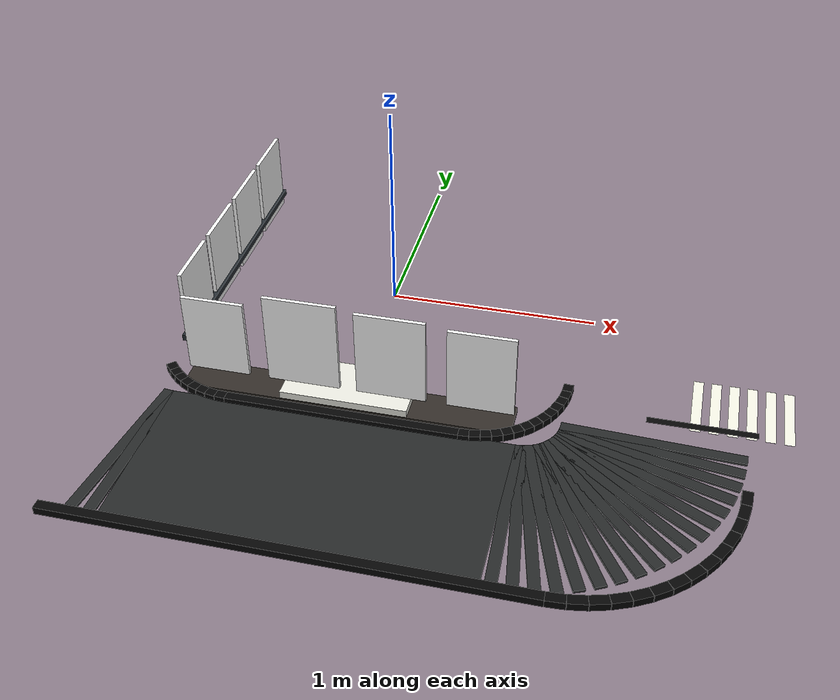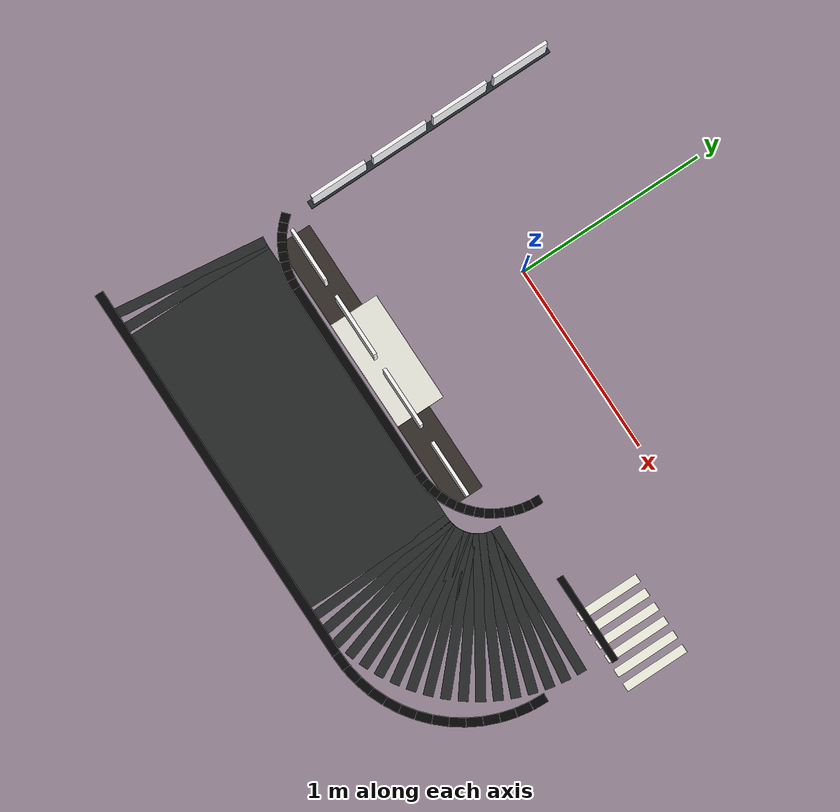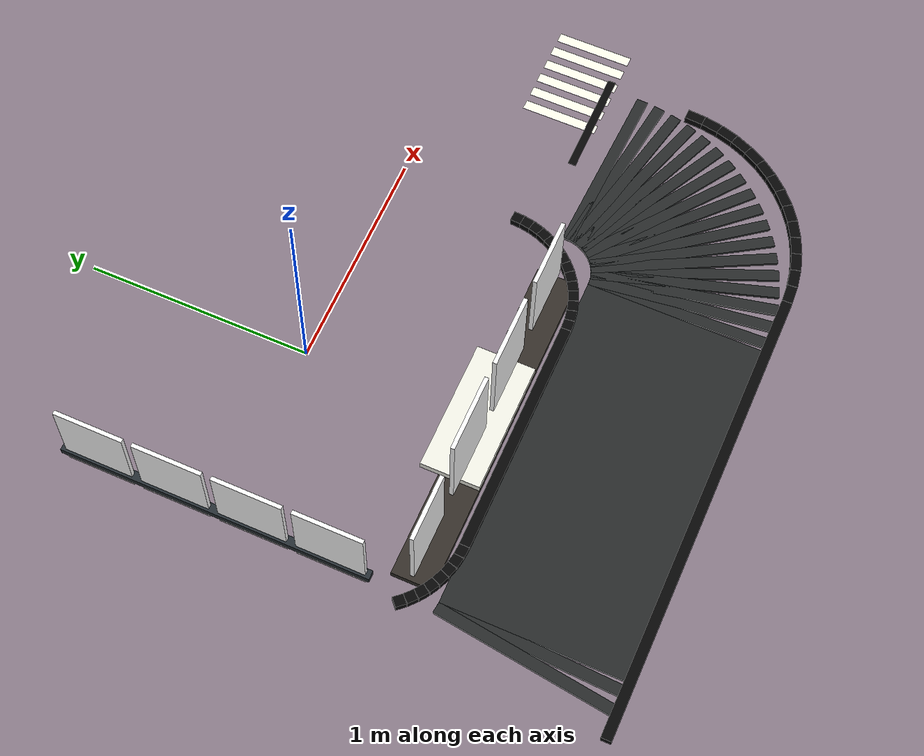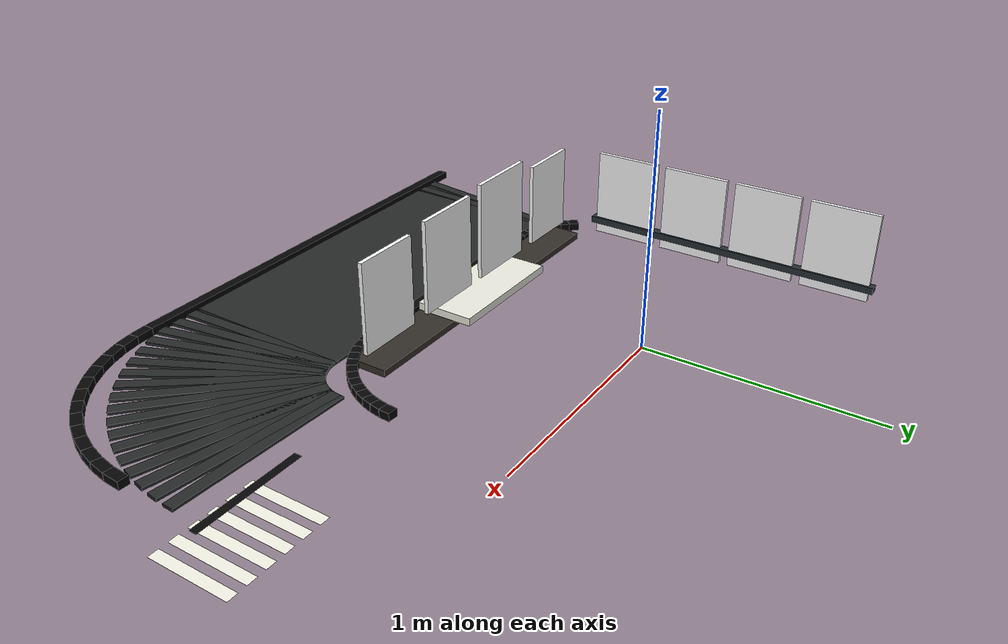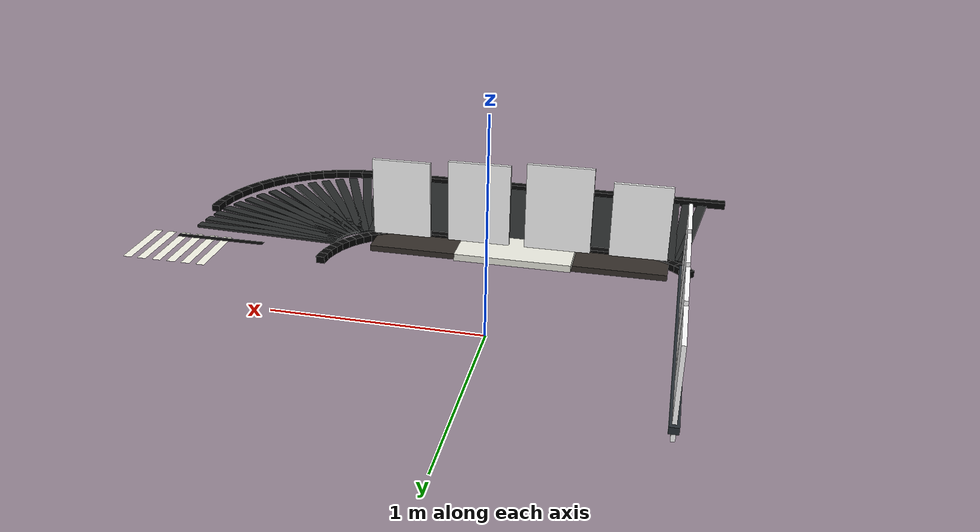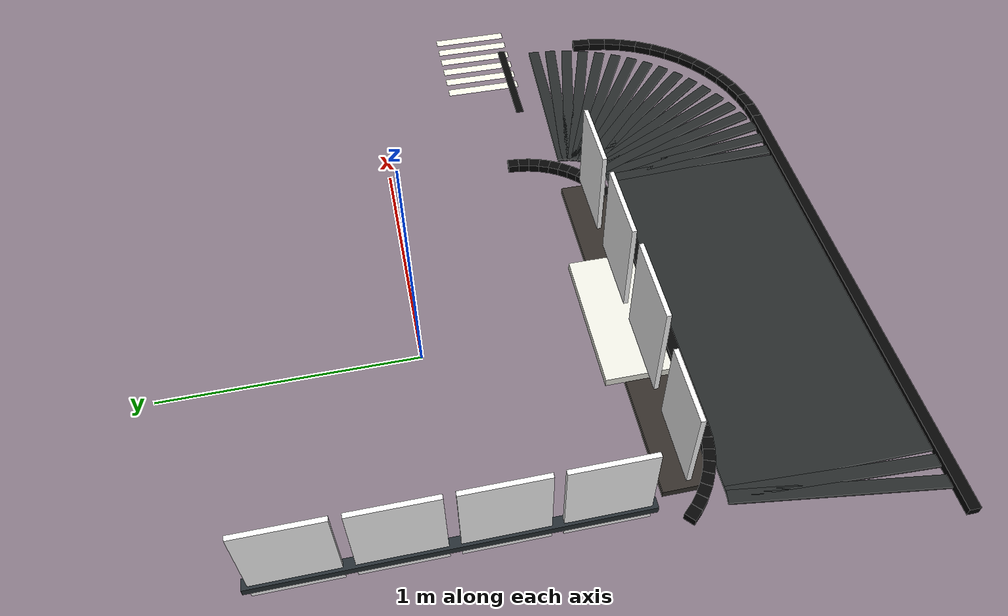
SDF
<sdf version="1.9">
 <world name="safe_city">
  <model name="road_surface_16">
   <static>true</static>
   <pose>-0.8543 -1.3446 0.0060 0 0 -0.13090</pose>
   <link name="link">
    <visual name="visual">
     <geometry><box><size>0.0497 0.8000 0.0120</size></box></geometry>
     <material><ambient>0.15 0.16 0.16 1</ambient><diffuse>0.15 0.16 0.16 1</diffuse></material>
    </visual>
   </link>
  </model>
  <model name="road_surface_17">
   <static>true</static>
   <pose>-0.8048 -1.3489 0.0060 0 0 -0.04363</pose>
   <link name="link">
    <visual name="visual">
     <geometry><box><size>0.0497 0.8000 0.0120</size></box></geometry>
     <material><ambient>0.15 0.16 0.16 1</ambient><diffuse>0.15 0.16 0.16 1</diffuse></material>
    </visual>
   </link>
  </model>
  <model name="road_surface_18">
   <static>true</static>
   <pose>-0.0000 -1.3500 0.0060 0 0 0.00000</pose>
   <link name="link">
    <visual name="visual">
     <geometry><box><size>1.5600 0.8000 0.0120</size></box></geometry>
     <material><ambient>0.15 0.16 0.16 1</ambient><diffuse>0.15 0.16 0.16 1</diffuse></material>
    </visual>
   </link>
  </model>
  <model name="road_surface_19">
   <static>true</static>
   <pose>0.8048 -1.3489 0.0060 0 0 0.04363</pose>
   <link name="link">
    <visual name="visual">
     <geometry><box><size>0.0497 0.8000 0.0120</size></box></geometry>
     <material><ambient>0.15 0.16 0.16 1</ambient><diffuse>0.15 0.16 0.16 1</diffuse></material>
    </visual>
   </link>
  </model>
  <model name="road_surface_20">
   <static>true</static>
   <pose>0.8543 -1.3446 0.0060 0 0 0.13090</pose>
   <link name="link">
    <visual name="visual">
     <geometry><box><size>0.0497 0.8000 0.0120</size></box></geometry>
     <material><ambient>0.15 0.16 0.16 1</ambient><diffuse>0.15 0.16 0.16 1</diffuse></material>
    </visual>
   </link>
  </model>
  <model name="road_surface_21">
   <static>true</static>
   <pose>0.9033 -1.3360 0.0060 0 0 0.21817</pose>
   <link name="link">
    <visual name="visual">
     <geometry><box><size>0.0497 0.8000 0.0120</size></box></geometry>
     <material><ambient>0.15 0.16 0.16 1</ambient><diffuse>0.15 0.16 0.16 1</diffuse></material>
    </visual>
   </link>
  </model>
  <model name="road_surface_22">
   <static>true</static>
   <pose>0.9512 -1.3231 0.0060 0 0 0.30543</pose>
   <link name="link">
    <visual name="visual">
     <geometry><box><size>0.0497 0.8000 0.0120</size></box></geometry>
     <material><ambient>0.15 0.16 0.16 1</ambient><diffuse>0.15 0.16 0.16 1</diffuse></material>
    </visual>
   </link>
  </model>
  <model name="road_surface_23">
   <static>true</static>
   <pose>0.9979 -1.3061 0.0060 0 0 0.39270</pose>
   <link name="link">
    <visual name="visual">
     <geometry><box><size>0.0497 0.8000 0.0120</size></box></geometry>
     <material><ambient>0.15 0.16 0.16 1</ambient><diffuse>0.15 0.16 0.16 1</diffuse></material>
    </visual>
   </link>
  </model>
  <model name="road_surface_24">
   <static>true</static>
   <pose>1.0429 -1.2851 0.0060 0 0 0.47997</pose>
   <link name="link">
    <visual name="visual">
     <geometry><box><size>0.0497 0.8000 0.0120</size></box></geometry>
     <material><ambient>0.15 0.16 0.16 1</ambient><diffuse>0.15 0.16 0.16 1</diffuse></material>
    </visual>
   </link>
  </model>
  <model name="road_surface_25">
   <static>true</static>
   <pose>1.0860 -1.2603 0.0060 0 0 0.56723</pose>
   <link name="link">
    <visual name="visual">
     <geometry><box><size>0.0497 0.8000 0.0120</size></box></geometry>
     <material><ambient>0.15 0.16 0.16 1</ambient><diffuse>0.15 0.16 0.16 1</diffuse></material>
    </visual>
   </link>
  </model>
  <model name="road_surface_26">
   <static>true</static>
   <pose>1.1267 -1.2318 0.0060 0 0 0.65450</pose>
   <link name="link">
    <visual name="visual">
     <geometry><box><size>0.0497 0.8000 0.0120</size></box></geometry>
     <material><ambient>0.15 0.16 0.16 1</ambient><diffuse>0.15 0.16 0.16 1</diffuse></material>
    </visual>
   </link>
  </model>
  <model name="road_surface_27">
   <static>true</static>
   <pose>1.1647 -1.1998 0.0060 0 0 0.74176</pose>
   <link name="link">
    <visual name="visual">
     <geometry><box><size>0.0497 0.8000 0.0120</size></box></geometry>
     <material><ambient>0.15 0.16 0.16 1</ambient><diffuse>0.15 0.16 0.16 1</diffuse></material>
    </visual>
   </link>
  </model>
  <model name="road_surface_28">
   <static>true</static>
   <pose>1.1998 -1.1647 0.0060 0 0 0.82903</pose>
   <link name="link">
    <visual name="visual">
     <geometry><box><size>0.0497 0.8000 0.0120</size></box></geometry>
     <material><ambient>0.15 0.16 0.16 1</ambient><diffuse>0.15 0.16 0.16 1</diffuse></material>
    </visual>
   </link>
  </model>
  <model name="road_surface_29">
   <static>true</static>
   <pose>1.2318 -1.1267 0.0060 0 0 0.91630</pose>
   <link name="link">
    <visual name="visual">
     <geometry><box><size>0.0497 0.8000 0.0120</size></box></geometry>
     <material><ambient>0.15 0.16 0.16 1</ambient><diffuse>0.15 0.16 0.16 1</diffuse></material>
    </visual>
   </link>
  </model>
  <model name="road_surface_30">
   <static>true</static>
   <pose>1.2603 -1.0860 0.0060 0 0 1.00356</pose>
   <link name="link">
    <visual name="visual">
     <geometry><box><size>0.0497 0.8000 0.0120</size></box></geometry>
     <material><ambient>0.15 0.16 0.16 1</ambient><diffuse>0.15 0.16 0.16 1</diffuse></material>
    </visual>
   </link>
  </model>
  <model name="road_surface_31">
   <static>true</static>
   <pose>1.2851 -1.0429 0.0060 0 0 1.09083</pose>
   <link name="link">
    <visual name="visual">
     <geometry><box><size>0.0497 0.8000 0.0120</size></box></geometry>
     <material><ambient>0.15 0.16 0.16 1</ambient><diffuse>0.15 0.16 0.16 1</diffuse></material>
    </visual>
   </link>
  </model>
  <model name="road_surface_32">
   <static>true</static>
   <pose>1.3061 -0.9979 0.0060 0 0 1.17810</pose>
   <link name="link">
    <visual name="visual">
     <geometry><box><size>0.0497 0.8000 0.0120</size></box></geometry>
     <material><ambient>0.15 0.16 0.16 1</ambient><diffuse>0.15 0.16 0.16 1</diffuse></material>
    </visual>
   </link>
  </model>
  <model name="road_surface_33">
   <static>true</static>
   <pose>1.3231 -0.9512 0.0060 0 0 1.26536</pose>
   <link name="link">
    <visual name="visual">
     <geometry><box><size>0.0497 0.8000 0.0120</size></box></geometry>
     <material><ambient>0.15 0.16 0.16 1</ambient><diffuse>0.15 0.16 0.16 1</diffuse></material>
    </visual>
   </link>
  </model>
  <model name="road_surface_34">
   <static>true</static>
   <pose>1.3360 -0.9033 0.0060 0 0 1.35263</pose>
   <link name="link">
    <visual name="visual">
     <geometry><box><size>0.0497 0.8000 0.0120</size></box></geometry>
     <material><ambient>0.15 0.16 0.16 1</ambient><diffuse>0.15 0.16 0.16 1</diffuse></material>
    </visual>
   </link>
  </model>
  <model name="road_surface_35">
   <static>true</static>
   <pose>1.3446 -0.8543 0.0060 0 0 1.43990</pose>
   <link name="link">
    <visual name="visual">
     <geometry><box><size>0.0497 0.8000 0.0120</size></box></geometry>
     <material><ambient>0.15 0.16 0.16 1</ambient><diffuse>0.15 0.16 0.16 1</diffuse></material>
    </visual>
   </link>
  </model>
  <model name="road_surface_36">
   <static>true</static>
   <pose>1.3489 -0.8048 0.0060 0 0 1.52716</pose>
   <link name="link">
    <visual name="visual">
     <geometry><box><size>0.0497 0.8000 0.0120</size></box></geometry>
     <material><ambient>0.15 0.16 0.16 1</ambient><diffuse>0.15 0.16 0.16 1</diffuse></material>
    </visual>
   </link>
  </model>
  <model name="outer_black_line_14">
   <static>true</static>
   <pose>-0.0000 -1.7500 0.0175 0 0 0.00000</pose>
   <link name="link">
    <collision name="collision"><geometry><box><size>2.0600 0.0450 0.0350</size></box></geometry></collision>
    <visual name="visual">
     <geometry><box><size>2.0600 0.0450 0.0350</size></box></geometry>
     <material><ambient>0.02 0.02 0.02 1</ambient><diffuse>0.02 0.02 0.02 1</diffuse></material>
    </visual>
   </link>
  </model>
  <model name="outer_black_line_15">
   <static>true</static>
   <pose>1.0703 -1.7477 0.0175 0 0 0.05610</pose>
   <link name="link">
    <collision name="collision"><geometry><box><size>0.0807 0.0450 0.0350</size></box></geometry></collision>
    <visual name="visual">
     <geometry><box><size>0.0807 0.0450 0.0350</size></box></geometry>
     <material><ambient>0.02 0.02 0.02 1</ambient><diffuse>0.02 0.02 0.02 1</diffuse></material>
    </visual>
   </link>
  </model>
  <model name="outer_black_line_16">
   <static>true</static>
   <pose>1.1504 -1.7387 0.0175 0 0 0.16830</pose>
   <link name="link">
    <collision name="collision"><geometry><box><size>0.0807 0.0450 0.0350</size></box></geometry></collision>
    <visual name="visual">
     <geometry><box><size>0.0807 0.0450 0.0350</size></box></geometry>
     <material><ambient>0.02 0.02 0.02 1</ambient><diffuse>0.02 0.02 0.02 1</diffuse></material>
    </visual>
   </link>
  </model>
  <model name="outer_black_line_17">
   <static>true</static>
   <pose>1.2290 -1.7208 0.0175 0 0 0.28050</pose>
   <link name="link">
    <collision name="collision"><geometry><box><size>0.0807 0.0450 0.0350</size></box></geometry></collision>
    <visual name="visual">
     <geometry><box><size>0.0807 0.0450 0.0350</size></box></geometry>
     <material><ambient>0.02 0.02 0.02 1</ambient><diffuse>0.02 0.02 0.02 1</diffuse></material>
    </visual>
   </link>
  </model>
  <model name="outer_black_line_18">
   <static>true</static>
   <pose>1.3051 -1.6941 0.0175 0 0 0.39270</pose>
   <link name="link">
    <collision name="collision"><geometry><box><size>0.0807 0.0450 0.0350</size></box></geometry></collision>
    <visual name="visual">
     <geometry><box><size>0.0807 0.0450 0.0350</size></box></geometry>
     <material><ambient>0.02 0.02 0.02 1</ambient><diffuse>0.02 0.02 0.02 1</diffuse></material>
    </visual>
   </link>
  </model>
  <model name="outer_black_line_19">
   <static>true</static>
   <pose>1.3777 -1.6592 0.0175 0 0 0.50490</pose>
   <link name="link">
    <collision name="collision"><geometry><box><size>0.0807 0.0450 0.0350</size></box></geometry></collision>
    <visual name="visual">
     <geometry><box><size>0.0807 0.0450 0.0350</size></box></geometry>
     <material><ambient>0.02 0.02 0.02 1</ambient><diffuse>0.02 0.02 0.02 1</diffuse></material>
    </visual>
   </link>
  </model>
  <model name="outer_black_line_20">
   <static>true</static>
   <pose>1.4460 -1.6163 0.0175 0 0 0.61710</pose>
   <link name="link">
    <collision name="collision"><geometry><box><size>0.0807 0.0450 0.0350</size></box></geometry></collision>
    <visual name="visual">
     <geometry><box><size>0.0807 0.0450 0.0350</size></box></geometry>
     <material><ambient>0.02 0.02 0.02 1</ambient><diffuse>0.02 0.02 0.02 1</diffuse></material>
    </visual>
   </link>
  </model>
  <model name="outer_black_line_21">
   <static>true</static>
   <pose>1.5090 -1.5660 0.0175 0 0 0.72930</pose>
   <link name="link">
    <collision name="collision"><geometry><box><size>0.0807 0.0450 0.0350</size></box></geometry></collision>
    <visual name="visual">
     <geometry><box><size>0.0807 0.0450 0.0350</size></box></geometry>
     <material><ambient>0.02 0.02 0.02 1</ambient><diffuse>0.02 0.02 0.02 1</diffuse></material>
    </visual>
   </link>
  </model>
  <model name="outer_black_line_22">
   <static>true</static>
   <pose>1.5660 -1.5090 0.0175 0 0 0.84150</pose>
   <link name="link">
    <collision name="collision"><geometry><box><size>0.0807 0.0450 0.0350</size></box></geometry></collision>
    <visual name="visual">
     <geometry><box><size>0.0807 0.0450 0.0350</size></box></geometry>
     <material><ambient>0.02 0.02 0.02 1</ambient><diffuse>0.02 0.02 0.02 1</diffuse></material>
    </visual>
   </link>
  </model>
  <model name="outer_black_line_23">
   <static>true</static>
   <pose>1.6163 -1.4460 0.0175 0 0 0.95370</pose>
   <link name="link">
    <collision name="collision"><geometry><box><size>0.0807 0.0450 0.0350</size></box></geometry></collision>
    <visual name="visual">
     <geometry><box><size>0.0807 0.0450 0.0350</size></box></geometry>
     <material><ambient>0.02 0.02 0.02 1</ambient><diffuse>0.02 0.02 0.02 1</diffuse></material>
    </visual>
   </link>
  </model>
  <model name="outer_black_line_24">
   <static>true</static>
   <pose>1.6592 -1.3777 0.0175 0 0 1.06590</pose>
   <link name="link">
    <collision name="collision"><geometry><box><size>0.0807 0.0450 0.0350</size></box></geometry></collision>
    <visual name="visual">
     <geometry><box><size>0.0807 0.0450 0.0350</size></box></geometry>
     <material><ambient>0.02 0.02 0.02 1</ambient><diffuse>0.02 0.02 0.02 1</diffuse></material>
    </visual>
   </link>
  </model>
  <model name="outer_black_line_25">
   <static>true</static>
   <pose>1.6941 -1.3051 0.0175 0 0 1.17810</pose>
   <link name="link">
    <collision name="collision"><geometry><box><size>0.0807 0.0450 0.0350</size></box></geometry></collision>
    <visual name="visual">
     <geometry><box><size>0.0807 0.0450 0.0350</size></box></geometry>
     <material><ambient>0.02 0.02 0.02 1</ambient><diffuse>0.02 0.02 0.02 1</diffuse></material>
    </visual>
   </link>
  </model>
  <model name="outer_black_line_26">
   <static>true</static>
   <pose>1.7208 -1.2290 0.0175 0 0 1.29030</pose>
   <link name="link">
    <collision name="collision"><geometry><box><size>0.0807 0.0450 0.0350</size></box></geometry></collision>
    <visual name="visual">
     <geometry><box><size>0.0807 0.0450 0.0350</size></box></geometry>
     <material><ambient>0.02 0.02 0.02 1</ambient><diffuse>0.02 0.02 0.02 1</diffuse></material>
    </visual>
   </link>
  </model>
  <model name="outer_black_line_27">
   <static>true</static>
   <pose>1.7387 -1.1504 0.0175 0 0 1.40250</pose>
   <link name="link">
    <collision name="collision"><geometry><box><size>0.0807 0.0450 0.0350</size></box></geometry></collision>
    <visual name="visual">
     <geometry><box><size>0.0807 0.0450 0.0350</size></box></geometry>
     <material><ambient>0.02 0.02 0.02 1</ambient><diffuse>0.02 0.02 0.02 1</diffuse></material>
    </visual>
   </link>
  </model>
  <model name="outer_black_line_28">
   <static>true</static>
   <pose>1.7477 -1.0703 0.0175 0 0 1.51470</pose>
   <link name="link">
    <collision name="collision"><geometry><box><size>0.0807 0.0450 0.0350</size></box></geometry></collision>
    <visual name="visual">
     <geometry><box><size>0.0807 0.0450 0.0350</size></box></geometry>
     <material><ambient>0.02 0.02 0.02 1</ambient><diffuse>0.02 0.02 0.02 1</diffuse></material>
    </visual>
   </link>
  </model>
  <model name="inner_black_line_06">
   <static>true</static>
   <pose>-0.8427 -0.8094 0.0175 0 0 -0.84150</pose>
   <link name="link">
    <collision name="collision"><geometry><box><size>0.0471 0.0450 0.0350</size></box></geometry></collision>
    <visual name="visual">
     <geometry><box><size>0.0471 0.0450 0.0350</size></box></geometry>
     <material><ambient>0.02 0.02 0.02 1</ambient><diffuse>0.02 0.02 0.02 1</diffuse></material>
    </visual>
   </link>
  </model>
  <model name="inner_black_line_07">
   <static>true</static>
   <pose>-0.8094 -0.8427 0.0175 0 0 -0.72930</pose>
   <link name="link">
    <collision name="collision"><geometry><box><size>0.0471 0.0450 0.0350</size></box></geometry></collision>
    <visual name="visual">
     <geometry><box><size>0.0471 0.0450 0.0350</size></box></geometry>
     <material><ambient>0.02 0.02 0.02 1</ambient><diffuse>0.02 0.02 0.02 1</diffuse></material>
    </visual>
   </link>
  </model>
  <model name="inner_black_line_08">
   <static>true</static>
   <pose>-0.7727 -0.8720 0.0175 0 0 -0.61710</pose>
   <link name="link">
    <collision name="collision"><geometry><box><size>0.0471 0.0450 0.0350</size></box></geometry></collision>
    <visual name="visual">
     <geometry><box><size>0.0471 0.0450 0.0350</size></box></geometry>
     <material><ambient>0.02 0.02 0.02 1</ambient><diffuse>0.02 0.02 0.02 1</diffuse></material>
    </visual>
   </link>
  </model>
  <model name="inner_black_line_09">
   <static>true</static>
   <pose>-0.7328 -0.8970 0.0175 0 0 -0.50490</pose>
   <link name="link">
    <collision name="collision"><geometry><box><size>0.0471 0.0450 0.0350</size></box></geometry></collision>
    <visual name="visual">
     <geometry><box><size>0.0471 0.0450 0.0350</size></box></geometry>
     <material><ambient>0.02 0.02 0.02 1</ambient><diffuse>0.02 0.02 0.02 1</diffuse></material>
    </visual>
   </link>
  </model>
  <model name="inner_black_line_10">
   <static>true</static>
   <pose>-0.6905 -0.9174 0.0175 0 0 -0.39270</pose>
   <link name="link">
    <collision name="collision"><geometry><box><size>0.0471 0.0450 0.0350</size></box></geometry></collision>
    <visual name="visual">
     <geometry><box><size>0.0471 0.0450 0.0350</size></box></geometry>
     <material><ambient>0.02 0.02 0.02 1</ambient><diffuse>0.02 0.02 0.02 1</diffuse></material>
    </visual>
   </link>
  </model>
  <model name="inner_black_line_11">
   <static>true</static>
   <pose>-0.6461 -0.9330 0.0175 0 0 -0.28050</pose>
   <link name="link">
    <collision name="collision"><geometry><box><size>0.0471 0.0450 0.0350</size></box></geometry></collision>
    <visual name="visual">
     <geometry><box><size>0.0471 0.0450 0.0350</size></box></geometry>
     <material><ambient>0.02 0.02 0.02 1</ambient><diffuse>0.02 0.02 0.02 1</diffuse></material>
    </visual>
   </link>
  </model>
  <model name="inner_black_line_12">
   <static>true</static>
   <pose>-0.6002 -0.9434 0.0175 0 0 -0.16830</pose>
   <link name="link">
    <collision name="collision"><geometry><box><size>0.0471 0.0450 0.0350</size></box></geometry></collision>
    <visual name="visual">
     <geometry><box><size>0.0471 0.0450 0.0350</size></box></geometry>
     <material><ambient>0.02 0.02 0.02 1</ambient><diffuse>0.02 0.02 0.02 1</diffuse></material>
    </visual>
   </link>
  </model>
  <model name="inner_black_line_13">
   <static>true</static>
   <pose>-0.5535 -0.9487 0.0175 0 0 -0.05610</pose>
   <link name="link">
    <collision name="collision"><geometry><box><size>0.0471 0.0450 0.0350</size></box></geometry></collision>
    <visual name="visual">
     <geometry><box><size>0.0471 0.0450 0.0350</size></box></geometry>
     <material><ambient>0.02 0.02 0.02 1</ambient><diffuse>0.02 0.02 0.02 1</diffuse></material>
    </visual>
   </link>
  </model>
  <model name="inner_black_line_14">
   <static>true</static>
   <pose>-0.0000 -0.9500 0.0175 0 0 0.00000</pose>
   <link name="link">
    <collision name="collision"><geometry><box><size>1.0600 0.0450 0.0350</size></box></geometry></collision>
    <visual name="visual">
     <geometry><box><size>1.0600 0.0450 0.0350</size></box></geometry>
     <material><ambient>0.02 0.02 0.02 1</ambient><diffuse>0.02 0.02 0.02 1</diffuse></material>
    </visual>
   </link>
  </model>
  <model name="inner_black_line_15">
   <static>true</static>
   <pose>0.5535 -0.9487 0.0175 0 0 0.05610</pose>
   <link name="link">
    <collision name="collision"><geometry><box><size>0.0471 0.0450 0.0350</size></box></geometry></collision>
    <visual name="visual">
     <geometry><box><size>0.0471 0.0450 0.0350</size></box></geometry>
     <material><ambient>0.02 0.02 0.02 1</ambient><diffuse>0.02 0.02 0.02 1</diffuse></material>
    </visual>
   </link>
  </model>
  <model name="inner_black_line_16">
   <static>true</static>
   <pose>0.6002 -0.9434 0.0175 0 0 0.16830</pose>
   <link name="link">
    <collision name="collision"><geometry><box><size>0.0471 0.0450 0.0350</size></box></geometry></collision>
    <visual name="visual">
     <geometry><box><size>0.0471 0.0450 0.0350</size></box></geometry>
     <material><ambient>0.02 0.02 0.02 1</ambient><diffuse>0.02 0.02 0.02 1</diffuse></material>
    </visual>
   </link>
  </model>
  <model name="inner_black_line_17">
   <static>true</static>
   <pose>0.6461 -0.9330 0.0175 0 0 0.28050</pose>
   <link name="link">
    <collision name="collision"><geometry><box><size>0.0471 0.0450 0.0350</size></box></geometry></collision>
    <visual name="visual">
     <geometry><box><size>0.0471 0.0450 0.0350</size></box></geometry>
     <material><ambient>0.02 0.02 0.02 1</ambient><diffuse>0.02 0.02 0.02 1</diffuse></material>
    </visual>
   </link>
  </model>
  <model name="inner_black_line_18">
   <static>true</static>
   <pose>0.6905 -0.9174 0.0175 0 0 0.39270</pose>
   <link name="link">
    <collision name="collision"><geometry><box><size>0.0471 0.0450 0.0350</size></box></geometry></collision>
    <visual name="visual">
     <geometry><box><size>0.0471 0.0450 0.0350</size></box></geometry>
     <material><ambient>0.02 0.02 0.02 1</ambient><diffuse>0.02 0.02 0.02 1</diffuse></material>
    </visual>
   </link>
  </model>
  <model name="inner_black_line_19">
   <static>true</static>
   <pose>0.7328 -0.8970 0.0175 0 0 0.50490</pose>
   <link name="link">
    <collision name="collision"><geometry><box><size>0.0471 0.0450 0.0350</size></box></geometry></collision>
    <visual name="visual">
     <geometry><box><size>0.0471 0.0450 0.0350</size></box></geometry>
     <material><ambient>0.02 0.02 0.02 1</ambient><diffuse>0.02 0.02 0.02 1</diffuse></material>
    </visual>
   </link>
  </model>
  <model name="inner_black_line_20">
   <static>true</static>
   <pose>0.7727 -0.8720 0.0175 0 0 0.61710</pose>
   <link name="link">
    <collision name="collision"><geometry><box><size>0.0471 0.0450 0.0350</size></box></geometry></collision>
    <visual name="visual">
     <geometry><box><size>0.0471 0.0450 0.0350</size></box></geometry>
     <material><ambient>0.02 0.02 0.02 1</ambient><diffuse>0.02 0.02 0.02 1</diffuse></material>
    </visual>
   </link>
  </model>
  <model name="inner_black_line_21">
   <static>true</static>
   <pose>0.8094 -0.8427 0.0175 0 0 0.72930</pose>
   <link name="link">
    <collision name="collision"><geometry><box><size>0.0471 0.0450 0.0350</size></box></geometry></collision>
    <visual name="visual">
     <geometry><box><size>0.0471 0.0450 0.0350</size></box></geometry>
     <material><ambient>0.02 0.02 0.02 1</ambient><diffuse>0.02 0.02 0.02 1</diffuse></material>
    </visual>
   </link>
  </model>
  <model name="inner_black_line_22">
   <static>true</static>
   <pose>0.8427 -0.8094 0.0175 0 0 0.84150</pose>
   <link name="link">
    <collision name="collision"><geometry><box><size>0.0471 0.0450 0.0350</size></box></geometry></collision>
    <visual name="visual">
     <geometry><box><size>0.0471 0.0450 0.0350</size></box></geometry>
     <material><ambient>0.02 0.02 0.02 1</ambient><diffuse>0.02 0.02 0.02 1</diffuse></material>
    </visual>
   </link>
  </model>
  <model name="inner_black_line_23">
   <static>true</static>
   <pose>0.8720 -0.7727 0.0175 0 0 0.95370</pose>
   <link name="link">
    <collision name="collision"><geometry><box><size>0.0471 0.0450 0.0350</size></box></geometry></collision>
    <visual name="visual">
     <geometry><box><size>0.0471 0.0450 0.0350</size></box></geometry>
     <material><ambient>0.02 0.02 0.02 1</ambient><diffuse>0.02 0.02 0.02 1</diffuse></material>
    </visual>
   </link>
  </model>
  <model name="inner_black_line_24">
   <static>true</static>
   <pose>0.8970 -0.7328 0.0175 0 0 1.06590</pose>
   <link name="link">
    <collision name="collision"><geometry><box><size>0.0471 0.0450 0.0350</size></box></geometry></collision>
    <visual name="visual">
     <geometry><box><size>0.0471 0.0450 0.0350</size></box></geometry>
     <material><ambient>0.02 0.02 0.02 1</ambient><diffuse>0.02 0.02 0.02 1</diffuse></material>
    </visual>
   </link>
  </model>
  <model name="inner_black_line_25">
   <static>true</static>
   <pose>0.9174 -0.6905 0.0175 0 0 1.17810</pose>
   <link name="link">
    <collision name="collision"><geometry><box><size>0.0471 0.0450 0.0350</size></box></geometry></collision>
    <visual name="visual">
     <geometry><box><size>0.0471 0.0450 0.0350</size></box></geometry>
     <material><ambient>0.02 0.02 0.02 1</ambient><diffuse>0.02 0.02 0.02 1</diffuse></material>
    </visual>
   </link>
  </model>
  <model name="inner_black_line_26">
   <static>true</static>
   <pose>0.9330 -0.6461 0.0175 0 0 1.29030</pose>
   <link name="link">
    <collision name="collision"><geometry><box><size>0.0471 0.0450 0.0350</size></box></geometry></collision>
    <visual name="visual">
     <geometry><box><size>0.0471 0.0450 0.0350</size></box></geometry>
     <material><ambient>0.02 0.02 0.02 1</ambient><diffuse>0.02 0.02 0.02 1</diffuse></material>
    </visual>
   </link>
  </model>
  <model name="inner_black_line_27">
   <static>true</static>
   <pose>0.9434 -0.6002 0.0175 0 0 1.40250</pose>
   <link name="link">
    <collision name="collision"><geometry><box><size>0.0471 0.0450 0.0350</size></box></geometry></collision>
    <visual name="visual">
     <geometry><box><size>0.0471 0.0450 0.0350</size></box></geometry>
     <material><ambient>0.02 0.02 0.02 1</ambient><diffuse>0.02 0.02 0.02 1</diffuse></material>
    </visual>
   </link>
  </model>
  <model name="inner_black_line_28">
   <static>true</static>
   <pose>0.9487 -0.5535 0.0175 0 0 1.51470</pose>
   <link name="link">
    <collision name="collision"><geometry><box><size>0.0471 0.0450 0.0350</size></box></geometry></collision>
    <visual name="visual">
     <geometry><box><size>0.0471 0.0450 0.0350</size></box></geometry>
     <material><ambient>0.02 0.02 0.02 1</ambient><diffuse>0.02 0.02 0.02 1</diffuse></material>
    </visual>
   </link>
  </model>
  <model name="right_sidewalk_lower_line">
   <static>true</static>
   <pose>1.55 -0.66 0.0116 0 0 0</pose>
   <link name="link">
    <visual name="visual">
     <geometry><plane><size>0.48 0.035</size></plane></geometry>
     <material><ambient>0.02 0.02 0.02 1</ambient><diffuse>0.02 0.02 0.02 1</diffuse></material>
    </visual>
   </link>
  </model>
  <model name="right_crosswalk_lower_0">
   <static>true</static>
   <pose>1.520 -0.520 0.0115 0 0 0</pose>
   <link name="link">
    <visual name="visual">
     <geometry><plane><size>0.045 0.34</size></plane></geometry>
     <material><ambient>0.96 0.96 0.90 1</ambient><diffuse>0.96 0.96 0.90 1</diffuse></material>
    </visual>
   </link>
  </model>
  <model name="right_crosswalk_lower_1">
   <static>true</static>
   <pose>1.600 -0.520 0.0115 0 0 0</pose>
   <link name="link">
    <visual name="visual">
     <geometry><plane><size>0.045 0.34</size></plane></geometry>
     <material><ambient>0.96 0.96 0.90 1</ambient><diffuse>0.96 0.96 0.90 1</diffuse></material>
    </visual>
   </link>
  </model>
  <model name="right_crosswalk_lower_2">
   <static>true</static>
   <pose>1.680 -0.520 0.0115 0 0 0</pose>
   <link name="link">
    <visual name="visual">
     <geometry><plane><size>0.045 0.34</size></plane></geometry>
     <material><ambient>0.96 0.96 0.90 1</ambient><diffuse>0.96 0.96 0.90 1</diffuse></material>
    </visual>
   </link>
  </model>
  <model name="right_crosswalk_lower_3">
   <static>true</static>
   <pose>1.760 -0.520 0.0115 0 0 0</pose>
   <link name="link">
    <visual name="visual">
     <geometry><plane><size>0.045 0.34</size></plane></geometry>
     <material><ambient>0.96 0.96 0.90 1</ambient><diffuse>0.96 0.96 0.90 1</diffuse></material>
    </visual>
   </link>
  </model>
  <model name="right_crosswalk_lower_4">
   <static>true</static>
   <pose>1.840 -0.520 0.0115 0 0 0</pose>
   <link name="link">
    <visual name="visual">
     <geometry><plane><size>0.045 0.34</size></plane></geometry>
     <material><ambient>0.96 0.96 0.90 1</ambient><diffuse>0.96 0.96 0.90 1</diffuse></material>
    </visual>
   </link>
  </model>
  <model name="right_crosswalk_lower_5">
   <static>true</static>
   <pose>1.920 -0.520 0.0115 0 0 0</pose>
   <link name="link">
    <visual name="visual">
     <geometry><plane><size>0.045 0.34</size></plane></geometry>
     <material><ambient>0.96 0.96 0.90 1</ambient><diffuse>0.96 0.96 0.90 1</diffuse></material>
    </visual>
   </link>
  </model>
  <model name="people_models">
   <static>true</static>
   <pose>-0.82 0 0.32 0 0 0</pose>
   <link name="link">
    <visual name="people_real_photo_base">
     <pose>0 0 -0.220 0 0 0</pose>
     <geometry><box><size>0.040 1.36 0.030</size></box></geometry>
     <material><ambient>0.15 0.18 0.20 1</ambient><diffuse>0.15 0.18 0.20 1</diffuse></material>
    </visual>
    <visual name="medical_rescue_photo_billboard_a">
     <pose>0 -0.51 -0.08 0 0 0</pose>
     <geometry><box><size>0.018 0.300 0.400</size></box></geometry>
     <material>
      <ambient>1 1 1 1</ambient>
      <diffuse>1 1 1 1</diffuse>
      <pbr><metal><albedo_map>../materials/textures/medical_rescue_person_1.jpg</albedo_map></metal></pbr>
     </material>
    </visual>
    <visual name="normal_rescue_photo_billboard_a">
     <pose>0 -0.17 -0.08 0 0 0</pose>
     <geometry><box><size>0.018 0.300 0.400</size></box></geometry>
     <material>
      <ambient>1 1 1 1</ambient>
      <diffuse>1 1 1 1</diffuse>
      <pbr><metal><albedo_map>../materials/textures/normal_rescue_person_1.jpg</albedo_map></metal></pbr>
     </material>
    </visual>
    <visual name="medical_rescue_photo_billboard_b">
     <pose>0 0.17 -0.08 0 0 0</pose>
     <geometry><box><size>0.018 0.300 0.400</size></box></geometry>
     <material>
      <ambient>1 1 1 1</ambient>
      <diffuse>1 1 1 1</diffuse>
      <pbr><metal><albedo_map>../materials/textures/medical_rescue_person_2.jpg</albedo_map></metal></pbr>
     </material>
    </visual>
    <visual name="normal_rescue_photo_billboard_b">
     <pose>0 0.51 -0.08 0 0 0</pose>
     <geometry><box><size>0.018 0.300 0.400</size></box></geometry>
     <material>
      <ambient>1 1 1 1</ambient>
      <diffuse>1 1 1 1</diffuse>
      <pbr><metal><albedo_map>../materials/textures/normal_rescue_person_2.jpg</albedo_map></metal></pbr>
     </material>
    </visual>
   </link>
  </model>
  <model name="building_label_plate">
   <static>true</static>
   <pose>0 -0.78 0.05 0 0 0</pose>
   <link name="link">
    <visual name="visual">
     <geometry><box><size>0.58 0.26 0.035</size></box></geometry>
     <material><ambient>0.92 0.92 0.88 1</ambient><diffuse>0.92 0.92 0.88 1</diffuse></material>
    </visual>
   </link>
  </model>
  <model name="building_models">
   <static>true</static>
   <pose>0 -0.82 0.38 0 0 0</pose>
   <link name="link">
    <visual name="building_real_photo_base">
     <pose>0 0 -0.365 0 0 0</pose>
     <geometry><box><size>1.50 0.18 0.030</size></box></geometry>
     <material><ambient>0.20 0.18 0.16 1</ambient><diffuse>0.20 0.18 0.16 1</diffuse></material>
    </visual>
    <visual name="collapse_building_photo_billboard">
     <pose>-0.60 0 -0.12 0 0 0</pose>
     <geometry><box><size>0.285 0.018 0.380</size></box></geometry>
     <material>
      <ambient>1 1 1 1</ambient>
      <diffuse>1 1 1 1</diffuse>
      <pbr><metal><albedo_map>../materials/textures/collapse_building.jpg</albedo_map></metal></pbr>
     </material>
    </visual>
    <visual name="fire_building_photo_billboard">
     <pose>-0.20 0 -0.09 0 0 0</pose>
     <geometry><box><size>0.330 0.018 0.440</size></box></geometry>
     <material>
      <ambient>1 1 1 1</ambient>
      <diffuse>1 1 1 1</diffuse>
      <pbr><metal><albedo_map>../materials/textures/fire_building.jpg</albedo_map></metal></pbr>
     </material>
    </visual>
    <visual name="toxic_gas_building_photo_billboard">
     <pose>0.20 0 -0.10 0 0 0</pose>
     <geometry><box><size>0.315 0.018 0.420</size></box></geometry>
     <material>
      <ambient>1 1 1 1</ambient>
      <diffuse>1 1 1 1</diffuse>
      <pbr><metal><albedo_map>../materials/textures/toxic_gas_building.jpg</albedo_map></metal></pbr>
     </material>
    </visual>
    <visual name="power_failure_building_photo_billboard">
     <pose>0.60 0 -0.11 0 0 0</pose>
     <geometry><box><size>0.300 0.018 0.400</size></box></geometry>
     <material>
      <ambient>1 1 1 1</ambient>
      <diffuse>1 1 1 1</diffuse>
      <pbr><metal><albedo_map>../materials/textures/power_failure_building.jpg</albedo_map></metal></pbr>
     </material>
    </visual>
   </link>
  </model>
 </world>
</sdf>
